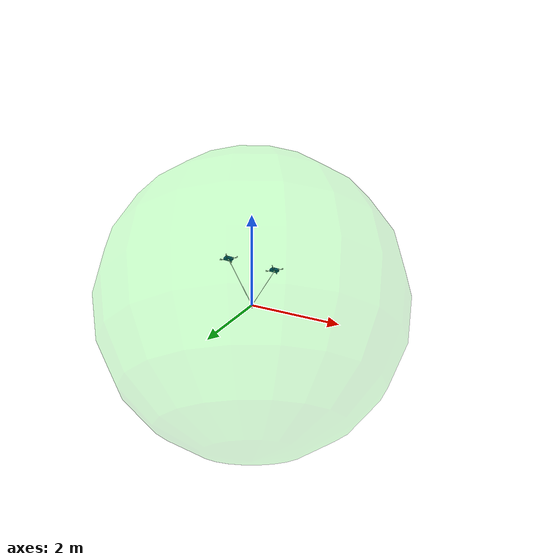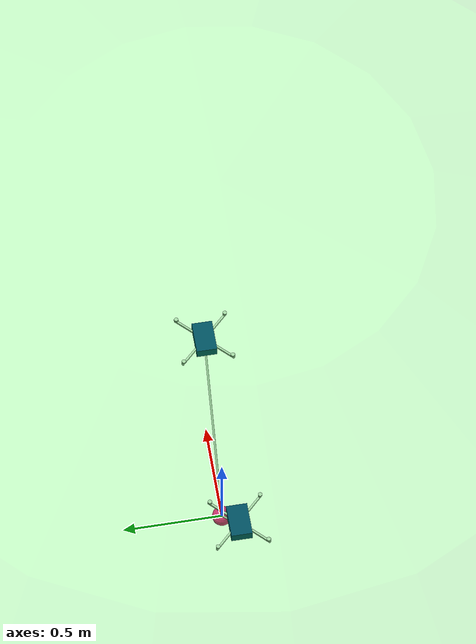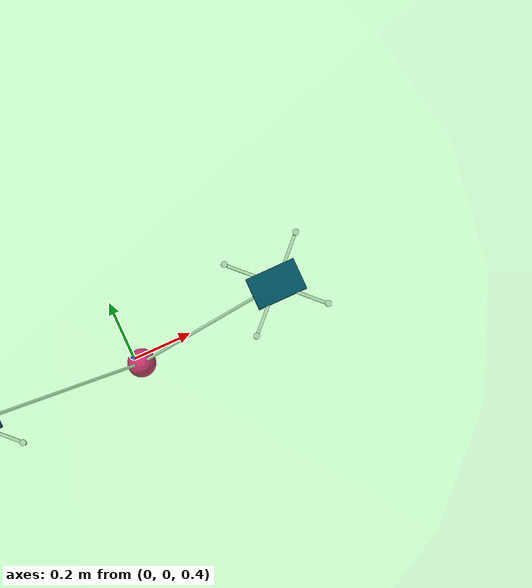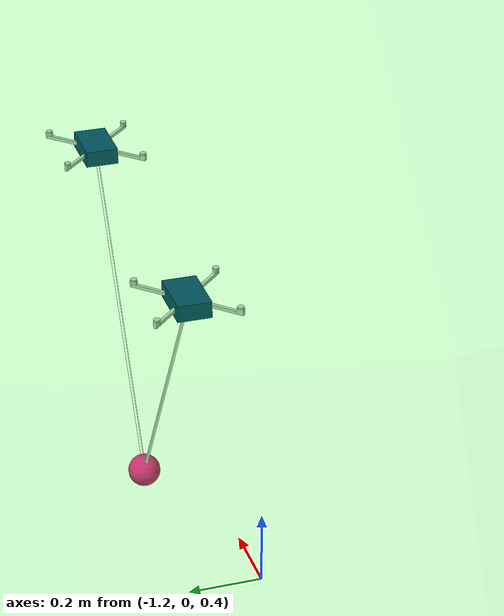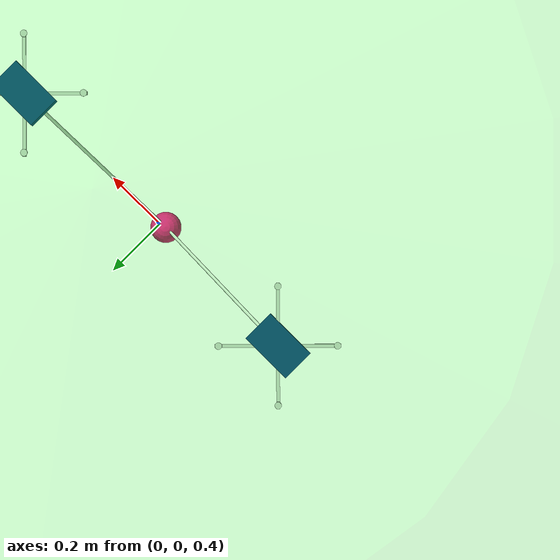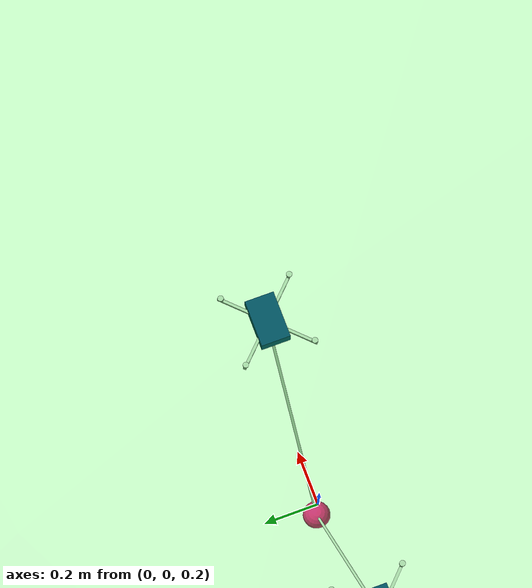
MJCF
<mujoco model="quadrotor_x_payload_multiple">
    <include file="empty_world_center.xml"/>
    <compiler angle="degree" inertiafromgeom="true" coordinate="local"/>
    <option timestep="0.002" gravity="0 0 -9.81" density="1.225" viscosity="1.789e-5" integrator="RK4"/>
    <default>
        <joint armature="1" damping="1" limited="true"/>
        <geom conaffinity="0" condim="3" density="5.0" friction="1 0.5 0.5" margin="0.01" rgba="0.8 0.6 0.4 1"/>
    </default>

    <worldbody>
        <!-- First quadrotor -->
        <body name="quadrotor_0" pos="-0.51 0 0.88">
            <inertial pos="0 0 0" mass="0.8" diaginertia="0.0049 0.0053 0.0098" />
            <joint name="root_0" type="free" damping="0" armature="0" pos="0 0 0" limited="false" />

            <body name="core_0" pos="0 0 0">
                <geom type="box" pos="0 0 0" quat="1 0 0 0" size="0.08 0.05 0.025" rgba="0 0.15 0.47 1" />
            </body>

            <body name="arm00_0" pos="0.071 0.071 0.0">
                <geom type="box" pos="0 0 0" size="0.075 .005 .005" quat="0.924 0.0 0.0 0.383" rgba=".8 .8 .8 1" />
            </body>

            <body name="arm10_0" pos="0.071 -0.071 0.0">
                <geom type="box" pos="0 0 0" size="0.075 .005 .005" quat="0.383 0.0 0.0 0.924" rgba=".8 .8 .8 1" />
            </body>

            <body name="arm20_0" pos="-0.071 -0.071 0.0">
                <geom type="box" pos="0 0 0" size="0.075 .005 .005" quat="-0.383 0.0 0.0 0.924" rgba=".8 .8 .8 1" />
            </body>

            <body name="arm30_0" pos="-0.071 0.071 0.0">
                <geom type="box" pos="0 0 0" size="0.075 .005 .005" quat="0.924 0.0 0.0 -0.383" rgba=".8 .8 .8 1" />
            </body>

            <body name="arm01_0" pos="0.12 0.12 0">
                <geom type="box" pos="0 0 0.005" size="0.01 0.005 0.01" quat="0.924 0.0 0.0 0.383" rgba=".8 .8 .8 1" />
                <body name="thruster0_0" pos="0 0 0.015">
                    <geom type="cylinder" pos="0 0 0.0025" size="0.05 0.0025" quat="0.924 0.0 0.0 0.383" rgba="1 0.67 0 0.5" />
                    <site name="motor0_0" type="cylinder" pos="0 0 0.0025" size=".01 .0025" quat="0.924 0.0 0.0 0.383" rgba=".8 .8 .8 1" />
                </body>
            </body>

            <body name="arm11_0" pos="0.12 -0.12 0">
                <geom type="box" pos="0 0 0.005" size=".01 .005 .01" quat="0.383 0.0 0.0 0.924" rgba=".8 .8 .8 1" />
                <body name="thruster1_0" pos="0 0 0.015">
                    <geom type="cylinder" pos="0 0 0.0025" size="0.05 0.0025" quat="1 0 0 0" rgba="1 0.67 0 0.5" />
                    <site name="motor1_0" type="cylinder" pos="0 0 .0025" size="0.01 0.0025" quat="1 0 0 0" rgba=".8 .8 .8 1" />
                </body>
            </body>

            <body name="arm21_0" pos="-0.12 -0.12 0">
                <geom type="box" pos="0 0 0.005" size=".01 .005 .01" quat="-0.383 0.0 0.0 0.924" rgba=".8 .8 .8 1" />
                <body name="thruster2_0" pos="0 0 0.015">
                    <geom type="cylinder" pos="0 0 0.0025" size=".05 .0025" quat="1 0 0 0" rgba="1 0.67 0 0.5" />
                    <site name="motor2_0" type="cylinder" pos="0 0 .0025" size=".01 .0025" quat="1 0 0 0" rgba=".8 .8 .8 1" />
                </body>
            </body>

            <body name="arm31_0" pos="-0.12 0.12 0">
                <geom type="box" pos="0 0 0.005" size=".01 .005 .01" quat="0.924 0.0 0.0 -0.383" rgba=".8 .8 .8 1" />
                <body name="thruster3_0" pos="0 0 0.015">
                    <geom type="cylinder" pos="0 0 0.0025" size=".05 .0025" quat="1 0 0 0" rgba="1 0.67 0 0.5" />
                    <site name="motor3_0" type="cylinder" pos="0 0 .0025" size=".01 .0025" quat="1 0 0 0" rgba=".8 .8 .8 1" />
                </body>
            </body>

            <body name="hook_core_0" pos="0 0 -0.02">
                <joint name="hook_core_joint_0" type="ball" pos="0 0 0" damping="0.1" armature="0.01"/>
                <geom type="sphere" size="0.02" rgba=".8 .8 .8 1"/>
                <site name="hook_core_site_0" pos="0 0 0" type="sphere" size="0.01" rgba=".8 .8 .8 1"/>
            </body>

            <site name="x_axis_0" type="box" pos=".1 .0 .0" size=".1 .004 .004" quat="1 0 0 0" rgba="1 0 0 0.2" />
            <site name="y_axis_0" type="box" pos=".0 .1 .0" size=".1 .004 .004" quat=".707 0 0 .707" rgba="0 1 0 0.2" />
            <site name="z_axis_0" type="box" pos=".0 .0 .1" size=".1 .004 .004" quat="-.707 0 .707 0" rgba="0 0 1 0.2" />
        </body>

        <!-- Second quadrotor -->
        <body name="quadrotor_1" pos="0.51 0 0.88">
            <inertial pos="0 0 0" mass="0.8" diaginertia="0.0049 0.0053 0.0098" />
            <joint name="root_1" type="free" damping="0" armature="0" pos="0 0 0" limited="false" />

            <body name="core_1" pos="0 0 0">
                <geom type="box" pos="0 0 0" quat="1 0 0 0" size="0.08 0.05 0.025" rgba="0 0.15 0.47 1" />
            </body>

            <body name="arm00_1" pos="0.071 0.071 0.0">
                <geom type="box" pos="0 0 0" size="0.075 .005 .005" quat="0.924 0.0 0.0 0.383" rgba=".8 .8 .8 1" />
            </body>

            <body name="arm10_1" pos="0.071 -0.071 0.0">
                <geom type="box" pos="0 0 0" size="0.075 .005 .005" quat="0.383 0.0 0.0 0.924" rgba=".8 .8 .8 1" />
            </body>

            <body name="arm20_1" pos="-0.071 -0.071 0.0">
                <geom type="box" pos="0 0 0" size="0.075 .005 .005" quat="-0.383 0.0 0.0 0.924" rgba=".8 .8 .8 1" />
            </body>

            <body name="arm30_1" pos="-0.071 0.071 0.0">
                <geom type="box" pos="0 0 0" size="0.075 .005 .005" quat="0.924 0.0 0.0 -0.383" rgba=".8 .8 .8 1" />
            </body>

            <body name="arm01_1" pos="0.12 0.12 0">
                <geom type="box" pos="0 0 0.005" size="0.01 0.005 0.01" quat="0.924 0.0 0.0 0.383" rgba=".8 .8 .8 1" />
                <body name="thruster0_1" pos="0 0 0.015">
                    <geom type="cylinder" pos="0 0 0.0025" size="0.05 0.0025" quat="0.924 0.0 0.0 0.383" rgba="1 0.67 0 0.5" />
                    <site name="motor0_1" type="cylinder" pos="0 0 0.0025" size=".01 .0025" quat="0.924 0.0 0.0 0.383" rgba=".8 .8 .8 1" />
                </body>
            </body>

            <body name="arm11_1" pos="0.12 -0.12 0">
                <geom type="box" pos="0 0 0.005" size=".01 .005 .01" quat="0.383 0.0 0.0 0.924" rgba=".8 .8 .8 1" />
                <body name="thruster1_1" pos="0 0 0.015">
                    <geom type="cylinder" pos="0 0 0.0025" size="0.05 0.0025" quat="1 0 0 0" rgba="1 0.67 0 0.5" />
                    <site name="motor1_1" type="cylinder" pos="0 0 .0025" size="0.01 0.0025" quat="1 0 0 0" rgba=".8 .8 .8 1" />
                </body>
            </body>

            <body name="arm21_1" pos="-0.12 -0.12 0">
                <geom type="box" pos="0 0 0.005" size=".01 .005 .01" quat="-0.383 0.0 0.0 0.924" rgba=".8 .8 .8 1" />
                <body name="thruster2_1" pos="0 0 0.015">
                    <geom type="cylinder" pos="0 0 0.0025" size=".05 .0025" quat="1 0 0 0" rgba="1 0.67 0 0.5" />
                    <site name="motor2_1" type="cylinder" pos="0 0 .0025" size=".01 .0025" quat="1 0 0 0" rgba=".8 .8 .8 1" />
                </body>
            </body>

            <body name="arm31_1" pos="-0.12 0.12 0">
                <geom type="box" pos="0 0 0.005" size=".01 .005 .01" quat="0.924 0.0 0.0 -0.383" rgba=".8 .8 .8 1" />
                <body name="thruster3_1" pos="0 0 0.015">
                    <geom type="cylinder" pos="0 0 0.0025" size=".05 .0025" quat="1 0 0 0" rgba="1 0.67 0 0.5" />
                    <site name="motor3_1" type="cylinder" pos="0 0 .0025" size=".01 .0025" quat="1 0 0 0" rgba=".8 .8 .8 1" />
                </body>
            </body>

            <body name="hook_core_1" pos="0 0 -0.02">
                <joint name="hook_core_joint_1" type="ball" pos="0 0 0" damping="0.1" armature="0.01"/>
                <geom type="sphere" size="0.02" rgba=".8 .8 .8 1"/>
                <site name="hook_core_site_1" pos="0 0 0" type="sphere" size="0.01" rgba=".8 .8 .8 1"/>
            </body>

            <site name="x_axis_1" type="box" pos=".1 .0 .0" size=".1 .004 .004" quat="1 0 0 0" rgba="1 0 0 0.2" />
            <site name="y_axis_1" type="box" pos=".0 .1 .0" size=".1 .004 .004" quat=".707 0 0 .707" rgba="0 1 0 0.2" />
            <site name="z_axis_1" type="box" pos=".0 .0 .1" size=".1 .004 .004" quat="-.707 0 .707 0" rgba="0 0 1 0.2" />
        </body>

        <!-- Payload -->
        <body name="payload" pos="0 0 0">
            <joint name="payload_joint" type="free" damping="0" armature="0" pos="0 0 0" limited="false"/>
            <geom type="sphere" size="0.05" rgba="1 0.02 0.54 1" mass="0.1"/>
            <body name="hook_payload" pos="0 0 0">
                <joint name="hook_payload_joint" type="ball" pos="0 0 0" range="0 0" damping="0.1" armature="0.01" limited="true"/>
                <geom type="sphere" size="0.02" rgba=".8 .8 .8 1"/>
                <site name="hook_payload_site" pos="0 0 0" type="sphere" size="0.01" rgba=".8 .8 .8 1"/>
            </body>
        </body>
    </worldbody>

    <!-- Tendons -->
    <tendon>
        <spatial range="0 1.0" limited="true" rgba="1 1 1 1" width=".005" stiffness="0">
            <site site="hook_payload_site"/>
            <site site="hook_core_site_0"/>
        </spatial>
        <spatial range="0 1.0" limited="true" rgba="1 1 1 1" width=".005" stiffness="0">
            <site site="hook_payload_site"/>
            <site site="hook_core_site_1"/>
        </spatial>
    </tendon>

    <!-- Actuators -->
    <actuator>
        <motor name="Motor0_0" ctrllimited="true" ctrlrange="0 5" gear="0  0. 1. 0. 0. -0.025" site="motor0_0"/>
        <motor name="Motor1_0" ctrllimited="true" ctrlrange="0 5" gear="0  0. 1. 0. 0. -0.025" site="motor1_0"/>
        <motor name="Motor2_0" ctrllimited="true" ctrlrange="0 5" gear="0  0. 1. 0. 0.  0.025" site="motor2_0"/>
        <motor name="Motor3_0" ctrllimited="true" ctrlrange="0 5" gear="0  0. 1. 0. 0.  0.025" site="motor3_0"/>

        <motor name="Motor0_1" ctrllimited="true" ctrlrange="0 5" gear="0  0. 1. 0. 0. -0.025" site="motor0_1"/>
        <motor name="Motor1_1" ctrllimited="true" ctrlrange="0 5" gear="0  0. 1. 0. 0. -0.025" site="motor1_1"/>
        <motor name="Motor2_1" ctrllimited="true" ctrlrange="0 5" gear="0  0. 1. 0. 0.  0.025" site="motor2_1"/>
        <motor name="Motor3_1" ctrllimited="true" ctrlrange="0 5" gear="0  0. 1. 0. 0.  0.025" site="motor3_1"/>
    </actuator>
</mujoco>

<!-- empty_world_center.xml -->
<mujoco model="empty-world">
	<compiler angle="degree" coordinate="local" inertiafromgeom="true"/>
	<option integrator="RK4" timestep="0.01"/>
	<size nconmax="500" njmax="1000"/>
	<default>
		<joint armature="1" damping="1" limited="true"/>
		<geom conaffinity="0" condim="3" density="5.0" friction="1 0.5 0.5" margin="0.01" rgba="0.8 0.6 0.4 1"/>
	</default>
	<asset>
		<texture fileback="images/sunny-back.png" filedown="images/sunny-down.png" filefront="images/sunny-front.png" fileleft="images/sunny-left.png" fileright="images/sunny-right.png" fileup="images/sunny-up.png" type="skybox"/>
		<texture builtin="flat" height="1278" mark="cross" markrgb="1 1 1" name="texgeom" random="0.01" rgb1="0.8627450980392157 0.8901960784313725 0.9137254901960784" rgb2="0.9058823529411765 0.9215686274509803 0.9647058823529412" type="cube" width="127"/>
		<texture builtin="checker" height="100" name="texplane" rgb1="0.8235294117647058 0.8117647058823529 0.9450980392156862" rgb2="0.43137254901960786 0.6392156862745098 0.9019607843137255" type="2d" width="100"/>
		<material name="MatPlane" reflectance="0.5" shininess="1" specular="1" texrepeat="60 60" texture="texplane"/>
		<material name="geom" texture="texgeom" texuniform="true"/>
	</asset>
	<worldbody>
		<light cutoff="100" diffuse="1 1 1" dir="0 0 -1.3" directional="true" exponent="1" pos="0 0 1.3" specular="0.1 0.1 0.1"/>
		<geom type="sphere" size="3.0" pos="0 0 0" rgba="0 1 0 0.1" conaffinity="0"/> Transparent green ball
	</worldbody>
</mujoco>
